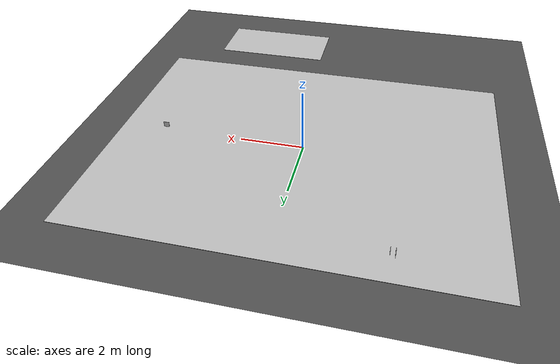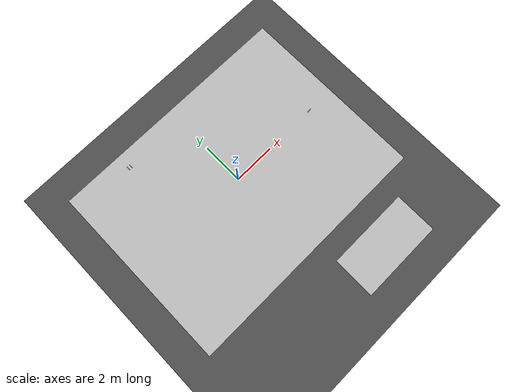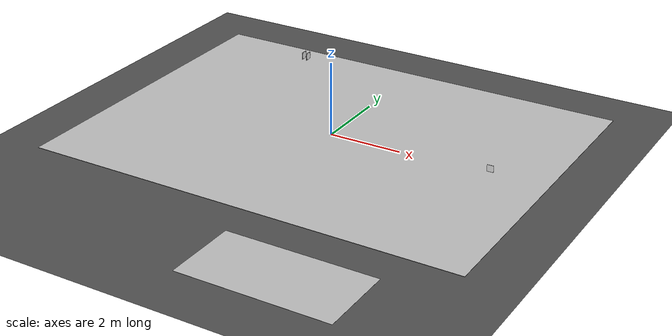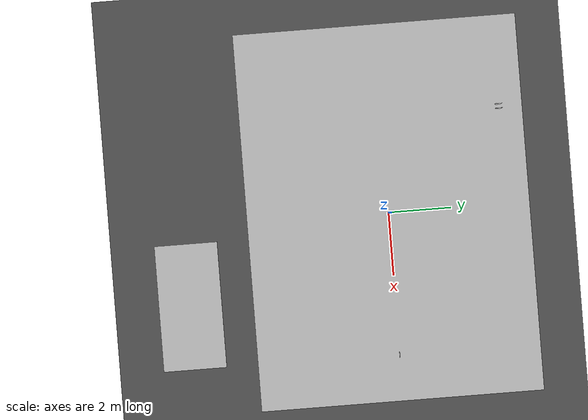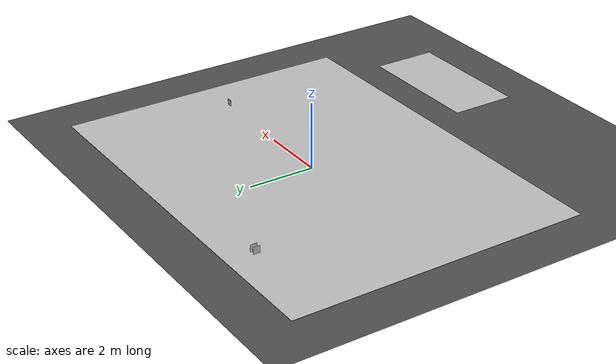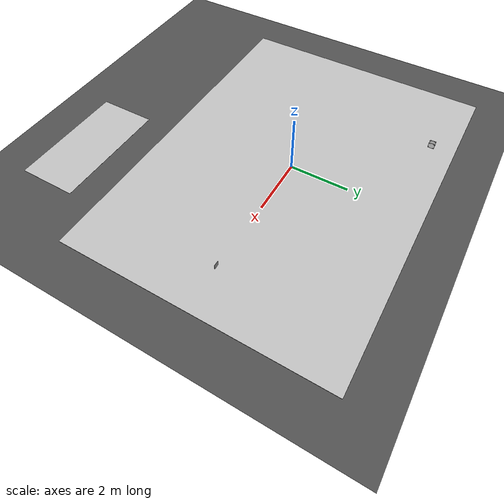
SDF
<?xml version="1.0" ?>
<sdf version="1.6">
  <world name="track_cw">
    <plugin name="gazebo_ros_state" filename="libgazebo_ros_state.so">
      <ros>
        <namespace>/</namespace>
      </ros>
      <update_rate>10.0</update_rate>
    </plugin>

    <light name="sun" type="directional">
      <cast_shadows>false</cast_shadows>
      <pose>0 0 10 0 0 0</pose>
      <diffuse>0.9 0.9 0.9 1</diffuse>
      <specular>0.2 0.2 0.2 1</specular>
      <direction>-0.3 0.1 -1.0</direction>
    </light>

    <model name="ground_plane">
      <static>true</static>
      <link name="link">
        <collision name="collision">
          <geometry>
            <plane>
              <normal>0 0 1</normal>
              <size>100 100</size>
            </plane>
          </geometry>
        </collision>
        <visual name="visual">
          <geometry>
            <plane>
              <normal>0 0 1</normal>
              <size>100 100</size>
            </plane>
          </geometry>
          <material>
            <ambient>0.2 0.2 0.2 1</ambient>
            <diffuse>0.3 0.3 0.3 1</diffuse>
          </material>
        </visual>
      </link>
    </model>

    <include>
      <uri>model://track_plane</uri>
      <pose>0 0 0.01 0 0 0</pose>
    </include>

    <!-- BEV scale calib mat (0.1 / 0.5 m grid) just south of the track near spawn X -->
    <include>
      <uri>model://bev_calib_mat</uri>
      <name>bev_calib_mat</name>
      <pose>2.5 -6.5 0.012 0 0 0</pose>
    </include>

    <!-- Mission signs: bottom edge 10 cm above track_plane (z=0.01) → bottom z=0.11 -->
    <include>
      <uri>model://turn_sign_left</uri>
      <name>turn_sign_left</name>
      <pose>-3.14 3.71 0.215 0 0 -1.5707963267948966</pose>
    </include>
    <include>
      <uri>model://turn_sign_right</uri>
      <name>turn_sign_right</name>
      <pose>-3.00 3.71 0.215 0 0 -1.5707963267948966</pose>
    </include>
    <include>
      <uri>model://aruco_stop_sign</uri>
      <name>aruco_stop_sign</name>
      <pose>4.5 0 0.20 0 0 3.141592653589793</pose>
    </include>

    <physics type="ode">
      <max_step_size>0.001</max_step_size>
      <real_time_factor>1.0</real_time_factor>
      <real_time_update_rate>1000</real_time_update_rate>
    </physics>
    <gravity>0 0 -9.8</gravity>
  </world>
</sdf>

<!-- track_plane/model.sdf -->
<sdf version="1.6">
  <model name="track_plane">
    <static>true</static>
    <link name="link">
      <pose>0 0 0 0 0 0</pose>
      <collision name="collision">
        <geometry>
          <plane>
            <normal>0 0 1</normal>
            <size>12.0 8.9975</size>
          </plane>
        </geometry>
        <surface>
          <friction>
            <ode>
              <mu>1.0</mu>
              <mu2>1.0</mu2>
            </ode>
          </friction>
        </surface>
      </collision>
      <visual name="visual">
        <geometry>
          <plane>
            <normal>0 0 1</normal>
            <size>12.0 8.9975</size>
          </plane>
        </geometry>
        <material>
          <script>
            <uri>model://track_plane/materials/scripts</uri>
            <uri>model://track_plane/materials/textures</uri>
            <name>TrackCWMaterial</name>
          </script>
        </material>
      </visual>
    </link>
  </model>
</sdf>

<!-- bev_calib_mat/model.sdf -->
<!-- Physical size must match config/bev_calib_mat.yaml width_m × height_m. -->
<sdf version="1.6">
  <model name="bev_calib_mat">
    <static>true</static>
    <link name="link">
      <pose>0 0 0 0 0 0</pose>
      <collision name="collision">
        <geometry>
          <plane>
            <normal>0 0 1</normal>
            <size>4.0 2.0</size>
          </plane>
        </geometry>
        <surface>
          <friction>
            <ode>
              <mu>0.8</mu>
              <mu2>0.8</mu2>
            </ode>
          </friction>
        </surface>
      </collision>
      <visual name="visual">
        <geometry>
          <plane>
            <normal>0 0 1</normal>
            <size>4.0 2.0</size>
          </plane>
        </geometry>
        <material>
          <script>
            <uri>model://bev_calib_mat/materials/scripts</uri>
            <uri>model://bev_calib_mat/materials/textures</uri>
            <name>BevCalibMatMaterial</name>
          </script>
        </material>
      </visual>
    </link>
  </model>
</sdf>

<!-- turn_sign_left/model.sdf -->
<sdf version="1.6">
  <model name="turn_sign_left">
    <static>true</static>
    <link name="board_link">
      <visual name="white_disk">
        <pose>0 0 0 1.5707963267948966 0 0</pose>
        <geometry>
          <cylinder>
            <radius>0.105</radius>
            <length>0.008</length>
          </cylinder>
        </geometry>
        <material>
          <ambient>1 1 1 1</ambient>
          <diffuse>1 1 1 1</diffuse>
        </material>
      </visual>
      <visual name="sign_face">
        <!-- Thin box in XZ (faces ±Y); offset to -Y side for spawn approach -->
        <pose>0 -0.0046 0 0 0 0</pose>
        <geometry>
          <box>
            <size>0.21 0.001 0.21</size>
          </box>
        </geometry>
        <material>
          <script>
            <uri>model://turn_sign_left/materials/scripts</uri>
            <uri>model://turn_sign_left/materials/textures</uri>
            <name>TurnSignLeftMaterial</name>
          </script>
        </material>
      </visual>
    </link>
  </model>
</sdf>

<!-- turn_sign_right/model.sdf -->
<sdf version="1.6">
  <model name="turn_sign_right">
    <static>true</static>
    <link name="board_link">
      <visual name="white_disk">
        <pose>0 0 0 1.5707963267948966 0 0</pose>
        <geometry>
          <cylinder>
            <radius>0.105</radius>
            <length>0.008</length>
          </cylinder>
        </geometry>
        <material>
          <ambient>1 1 1 1</ambient>
          <diffuse>1 1 1 1</diffuse>
        </material>
      </visual>
      <visual name="sign_face">
        <pose>0 -0.0046 0 0 0 0</pose>
        <geometry>
          <box>
            <size>0.21 0.001 0.21</size>
          </box>
        </geometry>
        <material>
          <script>
            <uri>model://turn_sign_right/materials/scripts</uri>
            <uri>model://turn_sign_right/materials/textures</uri>
            <name>TurnSignRightMaterial</name>
          </script>
        </material>
      </visual>
    </link>
  </model>
</sdf>

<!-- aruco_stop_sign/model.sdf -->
<sdf version="1.6">
  <model name="aruco_stop_sign">
    <static>true</static>
    <link name="board_link">
      <visual name="white_backing">
        <geometry>
          <box>
            <size>0.18 0.008 0.18</size>
          </box>
        </geometry>
        <material>
          <ambient>1 1 1 1</ambient>
          <diffuse>1 1 1 1</diffuse>
        </material>
      </visual>
      <visual name="sign_face">
        <pose>0 -0.0046 0 0 0 0</pose>
        <geometry>
          <box>
            <size>0.18 0.001 0.18</size>
          </box>
        </geometry>
        <material>
          <script>
            <uri>model://aruco_stop_sign/materials/scripts</uri>
            <uri>model://aruco_stop_sign/materials/textures</uri>
            <name>ArucoStopSignMaterial</name>
          </script>
        </material>
      </visual>
      <collision name="collision">
        <geometry>
          <box>
            <size>0.18 0.008 0.18</size>
          </box>
        </geometry>
      </collision>
    </link>
  </model>
</sdf>
